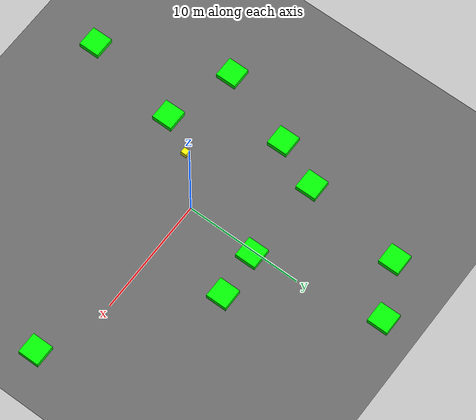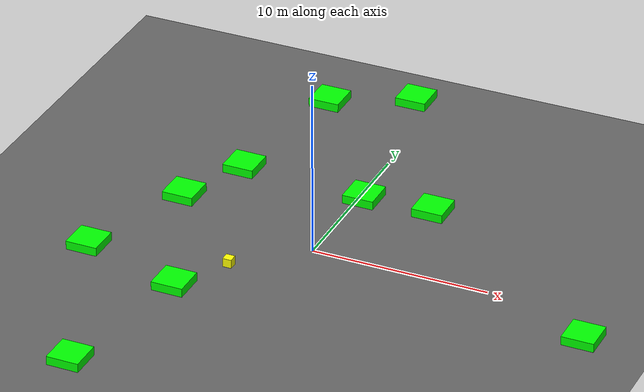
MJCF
<mujoco model="baseline_lvl5_obs10_seed4000">
    <compiler angle="degree" coordinate="local" inertiafromgeom="true"/>
    <option integrator="RK4" timestep="0.01"/>

    <asset>
        <texture builtin="gradient" height="100" rgb1="0.6 0.8 1" rgb2="0 0 0" type="skybox" width="100"/>
        <texture name="floor_texture" type="2d" builtin="checker" width="100" height="100" rgb1="0 0 0" rgb2="0.8 0.8 0.8"/>
        <material name="MatPlane" reflectance="0.5" shininess="1" specular="1" texrepeat="10 10" texture="floor_texture"/>
    </asset>

    <!-- Excluding the contact between the agent and the goal, and the agent and the floor -->
    <contact>
        <exclude body1="agent" body2="goal"/>
        <exclude body1 = "agent" body2 = "floor"/>
    </contact>

    <extension>
        <plugin plugin = "mujoco.pid">
            <instance name = "pid1">
                <config key="kp" value="2"/>
                <config key="ki" value="0"/>
                <config key="kd" value="55"/>
            </instance>
        </plugin>
    </extension>

    <worldbody>
        <light cutoff="100" diffuse="1 1 1" dir="-0 0 -1.3" directional="true" exponent="1" pos="0 0 1.3" specular=".1 .1 .1"/>
        <body name="floor" pos="0 0 0">
            <geom name="floor_geom" type="plane" size="20 20 0.1" material="MatPlane"/>
        </body>

        <!-- Goal -->
        <body name="goal" pos="0.000 0.000 0">
            <geom name="goal_geom" type="plane" size="0.5 0.5 1" pos="0 0 0" rgba="1 0 0 1"/>
        </body>

        <!-- Agent -->
        <body name="agent" pos="-3.438 -3.135 0.25">
            <joint name="j1" type="slide" axis ="1 0 0 "/>
            <joint name="j2" type="slide" axis ="0 1 0 "/>
            <geom name="agent_geom" type="box" size="0.25 0.25 0.250" rgba="1 1 0 1"/>
        </body>

    <body name="obstacle1" pos="-1.382 17.040 0.250">
      <geom name="obstacle1_geom" type="box"
            size="0.900 0.900 0.250"
            rgba="0 1 0 1"/>
    </body>
    <body name="obstacle2" pos="0.282 6.026 0.250">
      <geom name="obstacle2_geom" type="box"
            size="0.900 0.900 0.250"
            rgba="0 1 0 1"/>
    </body>
    <body name="obstacle3" pos="-7.043 6.314 0.250">
      <geom name="obstacle3_geom" type="box"
            size="0.900 0.900 0.250"
            rgba="0 1 0 1"/>
    </body>
    <body name="obstacle4" pos="-5.195 -6.105 0.250">
      <geom name="obstacle4_geom" type="box"
            size="0.900 0.900 0.250"
            rgba="0 1 0 1"/>
    </body>
    <body name="obstacle5" pos="-6.835 -14.617 0.250">
      <geom name="obstacle5_geom" type="box"
            size="0.900 0.900 0.250"
            rgba="0 1 0 1"/>
    </body>
    <body name="obstacle6" pos="4.241 6.270 0.250">
      <geom name="obstacle6_geom" type="box"
            size="0.900 0.900 0.250"
            rgba="0 1 0 1"/>
    </body>
    <body name="obstacle7" pos="-5.794 14.947 0.250">
      <geom name="obstacle7_geom" type="box"
            size="0.900 0.900 0.250"
            rgba="0 1 0 1"/>
    </body>
    <body name="obstacle8" pos="-11.120 -4.360 0.250">
      <geom name="obstacle8_geom" type="box"
            size="0.900 0.900 0.250"
            rgba="0 1 0 1"/>
    </body>
    <body name="obstacle9" pos="16.184 -2.138 0.250">
      <geom name="obstacle9_geom" type="box"
            size="0.900 0.900 0.250"
            rgba="0 1 0 1"/>
    </body>
    <body name="obstacle10" pos="-8.766 2.333 0.250">
      <geom name="obstacle10_geom" type="box"
            size="0.900 0.900 0.250"
            rgba="0 1 0 1"/>
    </body>
    </worldbody>

    <actuator>
        <plugin joint="j1" plugin="mujoco.pid" instance="pid1" />
        <plugin joint="j2" plugin="mujoco.pid" instance="pid1"/>
    </actuator>

  <sensor>
    <distance name="dist1" geom1="agent_geom" geom2="obstacle1_geom" cutoff="1.5"/>
    <distance name="dist2" geom1="agent_geom" geom2="obstacle2_geom" cutoff="1.5"/>
    <distance name="dist3" geom1="agent_geom" geom2="obstacle3_geom" cutoff="1.5"/>
    <distance name="dist4" geom1="agent_geom" geom2="obstacle4_geom" cutoff="1.5"/>
    <distance name="dist5" geom1="agent_geom" geom2="obstacle5_geom" cutoff="1.5"/>
    <distance name="dist6" geom1="agent_geom" geom2="obstacle6_geom" cutoff="1.5"/>
    <distance name="dist7" geom1="agent_geom" geom2="obstacle7_geom" cutoff="1.5"/>
    <distance name="dist8" geom1="agent_geom" geom2="obstacle8_geom" cutoff="1.5"/>
    <distance name="dist9" geom1="agent_geom" geom2="obstacle9_geom" cutoff="1.5"/>
    <distance name="dist10" geom1="agent_geom" geom2="obstacle10_geom" cutoff="1.5"/>
  </sensor>
</mujoco>
